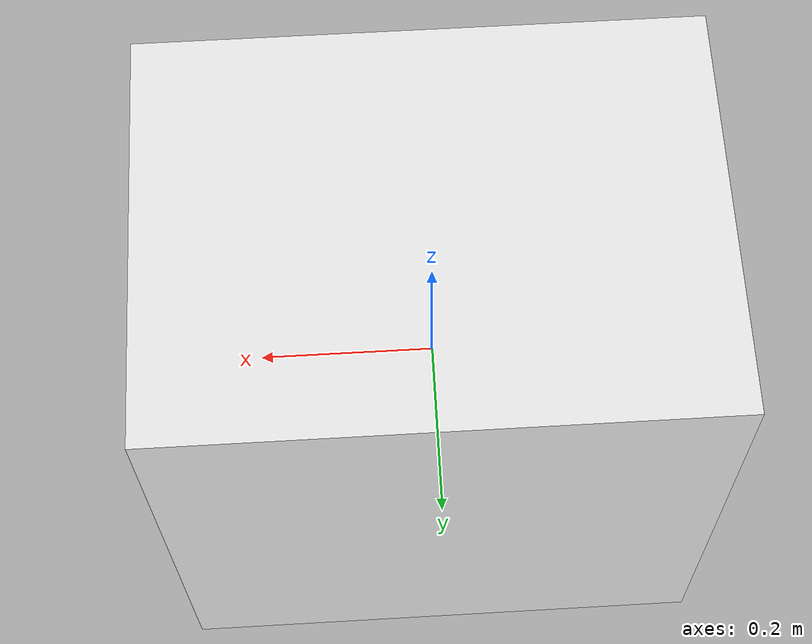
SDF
<?xml version="1.0"?>
<sdf version="1.7">
  <model name="box_uhaul_extra_large">
    <!-- The model for a solid box of uniform density. -->
    <link name="box">
      <inertial>
        <mass>1.0</mass>
        <inertia>
          <ixx>0.042</ixx>
          <ixy>0</ixy>
          <ixz>0</ixz>
          <iyy>0.042</iyy>
          <iyz>0</iyz>
          <izz>0.042</izz>
        </inertia>
      </inertial>

      <visual name="box_visual">
        <geometry>
          <box>
            <size>0.616 0.464 0.630</size>
          </box>
        </geometry>
        <material>
          <diffuse>0.9 0.9 0.9 0.9</diffuse>
        </material>
      </visual>

      <collision name="collision">
        <geometry>
          <box>
            <size>0.615 0.463 0.629</size>
          </box>
        </geometry>
        <surface>
          <friction>
            <ode>
              <mu>0.5</mu>
              <mu2>0.5</mu2>
            </ode>
          </friction>
        </surface>
      </collision>

      <collision name="minus_x_lower_left_corner">
        <pose> -0.308 -0.232 -0.315 0 0 0</pose>
        <geometry>
          <sphere>
            <radius>1e-7</radius>
          </sphere>
        </geometry>
        <surface>
          <friction>
            <ode>
              <mu>0.1</mu>
              <mu2>0.1</mu2>
            </ode>
          </friction>
        </surface>
      </collision>

      <collision name="minus_x_lower_right_corner">
        <pose> 0.308 -0.232 -0.315 0 0 0 </pose>
        <geometry>
          <sphere>
            <radius>1e-7</radius>
          </sphere>
        </geometry>
        <surface>
          <friction>
            <ode>
              <mu>0.1</mu>
              <mu2>0.1</mu2>
            </ode>
          </friction>
        </surface>
      </collision>

      <collision name="plus_x_lower_left_corner">
        <pose> -0.308 0.232 -0.315 0 0 0</pose>
        <geometry>
          <sphere>
            <radius>1e-7</radius>
          </sphere>
        </geometry>
        <surface>
          <friction>
            <ode>
              <mu>0.1</mu>
              <mu2>0.1</mu2>
            </ode>
          </friction>
        </surface>
      </collision>

      <collision name="plus_x_lower_right_corner">
        <pose> 0.308 0.232 -0.315 0 0 0 </pose>
        <geometry>
          <sphere>
            <radius>1e-7</radius>
          </sphere>
        </geometry>
        <surface>
          <friction>
            <ode>
              <mu>0.1</mu>
              <mu2>0.1</mu2>
            </ode>
          </friction>
        </surface>
      </collision>

      <collision name="minus_x_upper_left_corner">
        <pose> -0.308 -0.232 0.315 0 0 0</pose>
        <geometry>
          <sphere>
            <radius>1e-7</radius>
          </sphere>
        </geometry>
        <surface>
          <friction>
            <ode>
              <mu>0.1</mu>
              <mu2>0.1</mu2>
            </ode>
          </friction>
        </surface>
      </collision>

      <collision name="minus_x_upper_right_corner">
        <pose> 0.308 -0.232 0.315 0 0 0 </pose>
        <geometry>
          <sphere>
            <radius>1e-7</radius>
          </sphere>
        </geometry>
        <surface>
          <friction>
            <ode>
              <mu>0.1</mu>
              <mu2>0.1</mu2>
            </ode>
          </friction>
        </surface>
      </collision>

      <collision name="plus_x_upper_left_corner">
        <pose> -0.308 0.232 0.315 0 0 0</pose>
        <geometry>
          <sphere>
            <radius>1e-7</radius>
          </sphere>
        </geometry>
        <surface>
          <friction>
            <ode>
              <mu>0.1</mu>
              <mu2>0.1</mu2>
            </ode>
          </friction>
        </surface>
      </collision>

      <collision name="plus_x_upper_right_corner">
        <pose>0.308 0.232 0.315 0 0 0 </pose>
        <geometry>
          <sphere>
            <radius>1e-7</radius>
          </sphere>
        </geometry>
        <surface>
          <friction>
            <ode>
              <mu>0.1</mu>
              <mu2>0.1</mu2>
            </ode>
          </friction>
        </surface>
      </collision>

    </link>
  </model>
</sdf>
